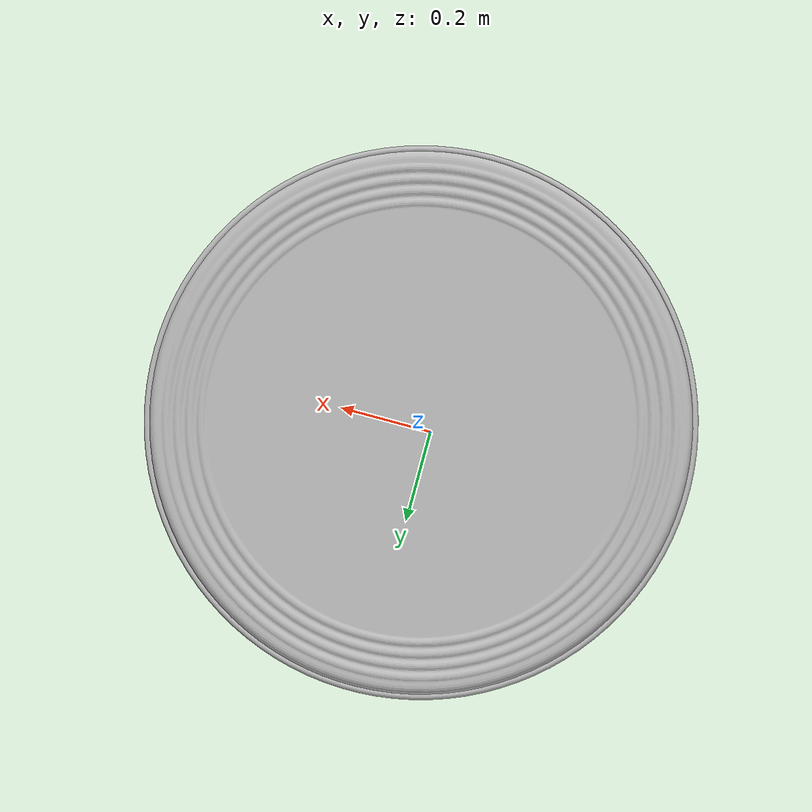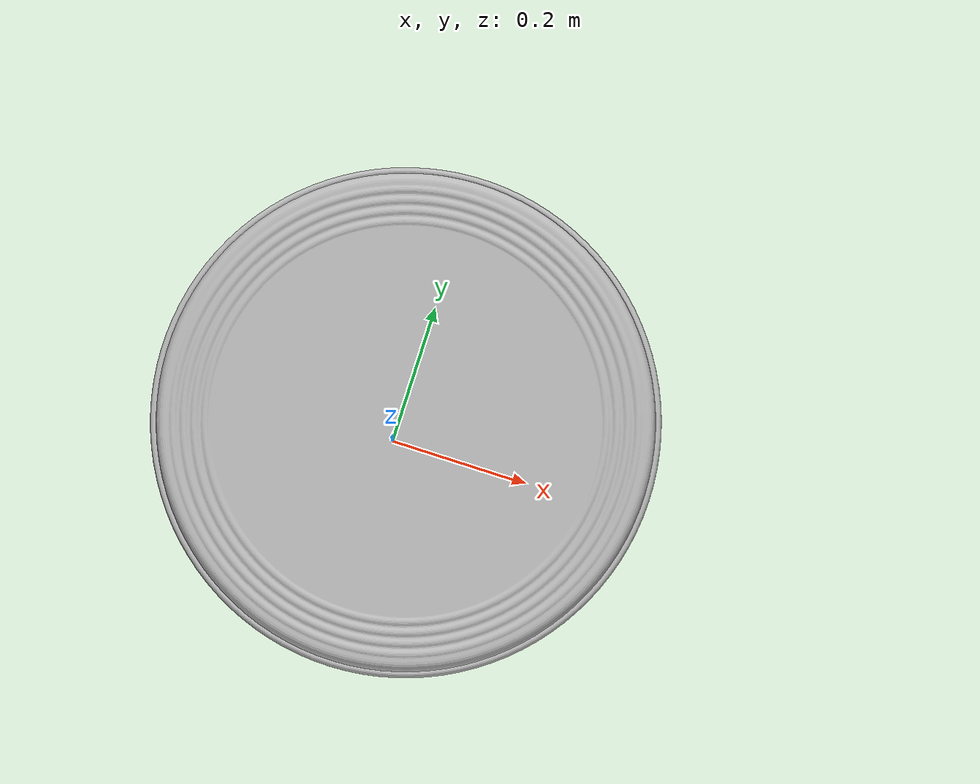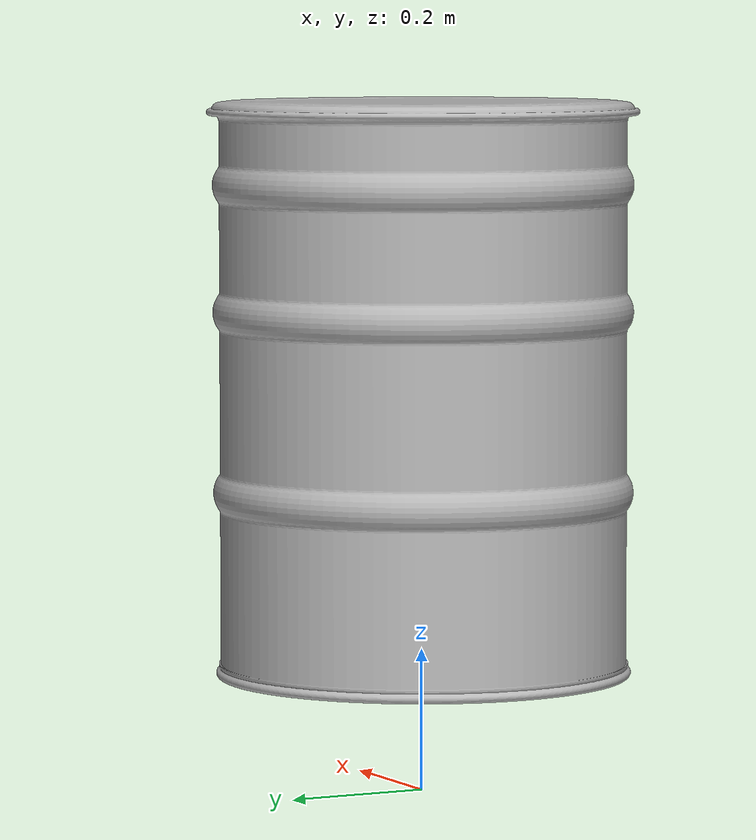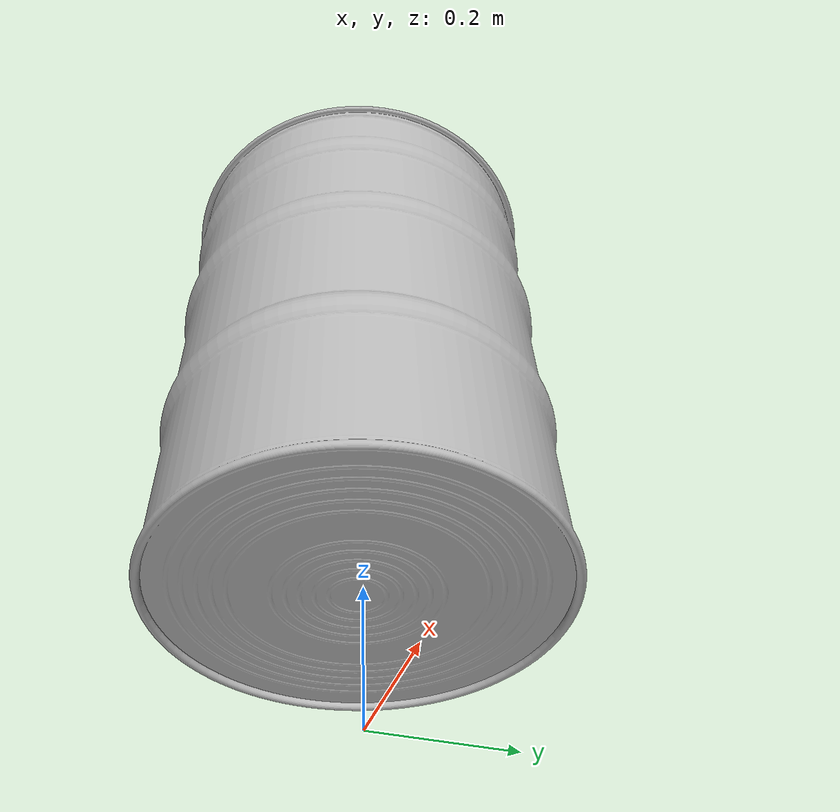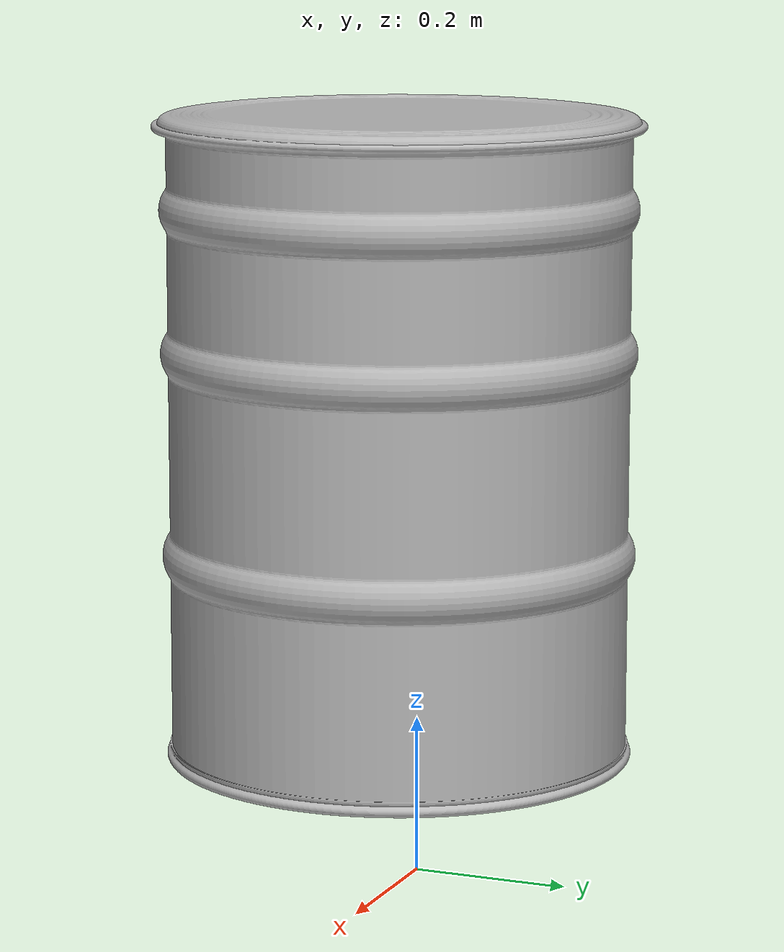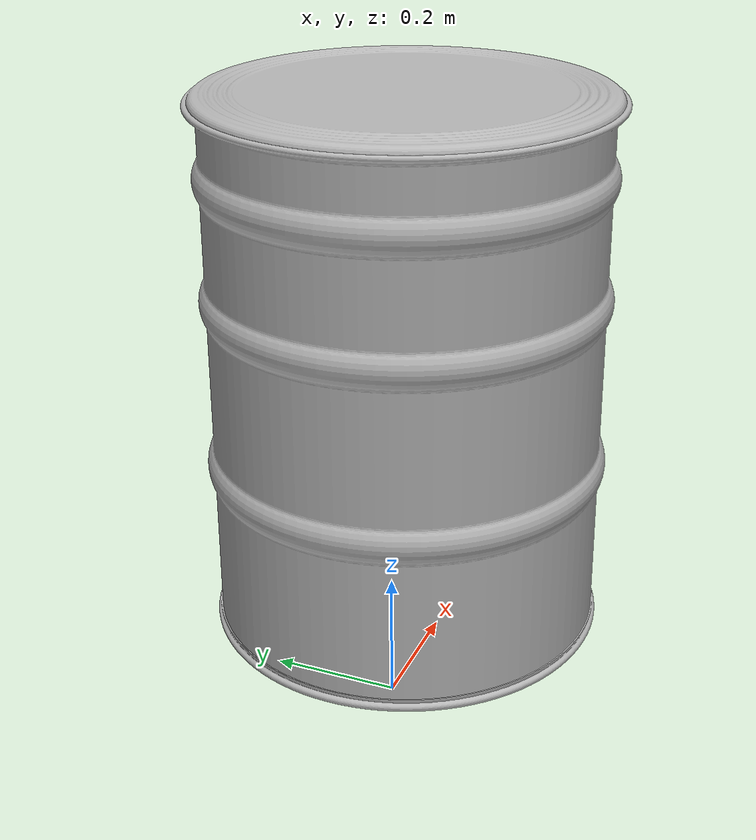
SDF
<?xml version="1.0" ?>
<sdf version="1.4">
  <model name="barrel_50">
    <link name="link">
	<!-- Original model did not have inertia matrix I copied the matrix from the beer -->
    <pose>0 0.2 0.5 1.57 0 0</pose>
      <inertial>
        <pose>0 0.3 0 0 0 0</pose>
        <mass>0.390</mass>
        <inertia>
          <ixx>0.00058</ixx>
          <ixy>0</ixy>
          <ixz>0</ixz>
          <iyy>0.00058</iyy>
          <iyz>0</iyz>
          <izz>0.00019</izz>
        </inertia>
      </inertial>
      <collision name="collision">
        <geometry>
          <mesh>
            <uri>model://barrel_50/meshes/barrel_50.stl</uri>
            <scale> 0.01 0.01 0.01 </scale>
          </mesh>
        </geometry>
      </collision>

      <visual name="visual">
        <geometry>
          <mesh>
            <uri>model://barrel_50/meshes/barrel_50.stl</uri>
            <scale> 0.01 0.01 0.01 </scale>
          </mesh>
        </geometry>
      </visual>
    </link>
  </model>
</sdf>
